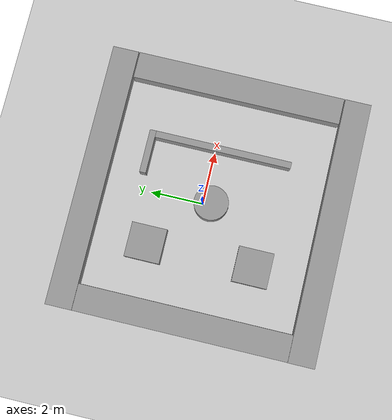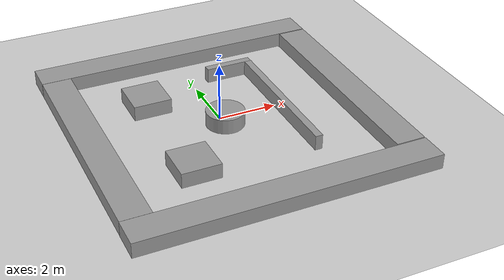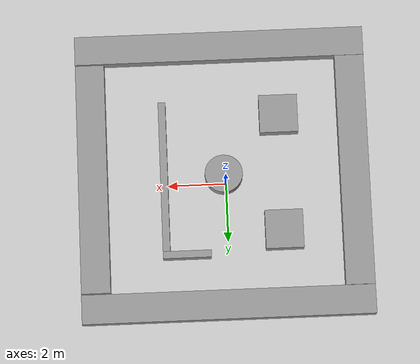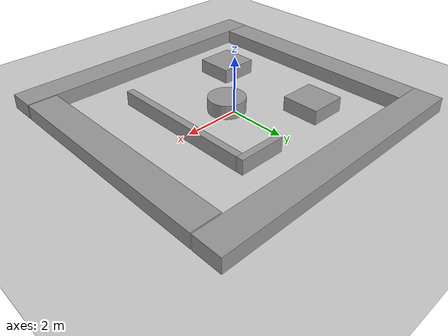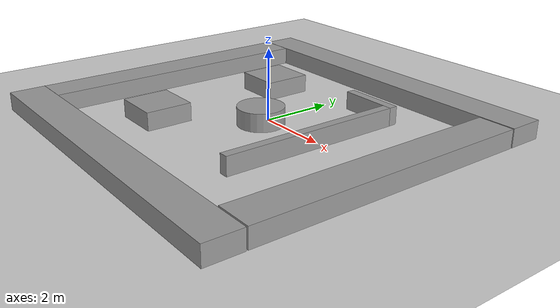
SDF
<sdf version='1.6'>
  <world name='default'>
    <!-- A global light source -->
    <include>
      <uri>model://sun</uri>
    </include>

    <!-- A ground plane -->
    <include>
      <uri>model://ground_plane</uri>
    </include>

    <physics type="ode">
      <real_time_update_rate>100.0</real_time_update_rate>
      <max_step_size>0.01</max_step_size>
      <real_time_factor>0.5</real_time_factor>
      <ode>
        <solver>
          <type>quick</type>
          <iters>150</iters>
          <precon_iters>0</precon_iters>
          <sor>1.400000</sor>
          <use_dynamic_moi_rescaling>1</use_dynamic_moi_rescaling>
        </solver>
        <constraints>
          <cfm>0.00001</cfm>
          <erp>0.2</erp>
          <contact_max_correcting_vel>2000.000000</contact_max_correcting_vel>
          <contact_surface_layer>0.01000</contact_surface_layer>
        </constraints>
      </ode>
    </physics>

    <!-- Load world -->
    <include>
      <uri>model://cluttered_world</uri>
    </include>

    <scene>
      <ambient>0.4 0.4 0.4 1</ambient>
      <background>0.7 0.7 0.7 1</background>
      <shadows>false</shadows>
    </scene>

    <gui fullscreen='0'>
      <camera name='user_camera'>
        <pose>0.8 0.0 12.0 0 1.5708 0</pose>
        <view_controller>orbit</view_controller>
      </camera>
    </gui>
  </world>
</sdf>

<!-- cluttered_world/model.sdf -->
<sdf version='1.6'>
  <model name='model'>
    <link name='link_0'>
      <pose frame=''>4.57139 -0.304798 0 0 -0 0</pose>
      <inertial>
        <mass>7.96481</mass>
        <inertia>
          <ixx>42.7699</ixx>
          <ixy>0</ixy>
          <ixz>0</ixz>
          <iyy>1.32747</iyy>
          <iyz>0</iyz>
          <izz>42.7699</izz>
        </inertia>
        <pose frame=''>0 0 0 0 -0 0</pose>
      </inertial>
      <visual name='visual'>
        <pose frame=''>0 0 0 0 -0 0</pose>
        <geometry>
          <box>
            <size>1 7.9648 1</size>
          </box>
        </geometry>
        <material>
          <lighting>1</lighting>
          <script>
            <uri>file://media/materials/scripts/gazebo.material</uri>
            <name>Gazebo/Grey</name>
          </script>
          <ambient>0.3 0.3 0.3 1</ambient>
          <diffuse>0.7 0.7 0.7 1</diffuse>
          <specular>0.01 0.01 0.01 1</specular>
          <emissive>0 0 0 1</emissive>
        </material>
        <cast_shadows>1</cast_shadows>
        <transparency>0</transparency>
      </visual>
      <collision name='collision'>
        <laser_retro>0</laser_retro>
        <max_contacts>10</max_contacts>
        <pose frame=''>0 0 0 0 -0 0</pose>
        <geometry>
          <box>
            <size>1 7.9648 1</size>
          </box>
        </geometry>
        <surface>
          <friction>
            <ode>
              <mu>1</mu>
              <mu2>1</mu2>
              <fdir1>0 0 0</fdir1>
              <slip1>0</slip1>
              <slip2>0</slip2>
            </ode>
            <torsional>
              <coefficient>1</coefficient>
              <patch_radius>0</patch_radius>
              <surface_radius>0</surface_radius>
              <use_patch_radius>1</use_patch_radius>
              <ode>
                <slip>0</slip>
              </ode>
            </torsional>
          </friction>
          <bounce>
            <restitution_coefficient>0</restitution_coefficient>
            <threshold>1e+06</threshold>
          </bounce>
          <contact>
            <collide_without_contact>0</collide_without_contact>
            <collide_without_contact_bitmask>1</collide_without_contact_bitmask>
            <collide_bitmask>1</collide_bitmask>
            <ode>
              <soft_cfm>0</soft_cfm>
              <soft_erp>0.2</soft_erp>
              <kp>1e+13</kp>
              <kd>1</kd>
              <max_vel>0.01</max_vel>
              <min_depth>0</min_depth>
            </ode>
            <bullet>
              <split_impulse>1</split_impulse>
              <split_impulse_penetration_threshold>-0.01</split_impulse_penetration_threshold>
              <soft_cfm>0</soft_cfm>
              <soft_erp>0.2</soft_erp>
              <kp>1e+13</kp>
              <kd>1</kd>
            </bullet>
          </contact>
        </surface>
      </collision>
    </link>
    <link name='link_1'>
      <pose frame=''>0.062002 -4.82471 0 0 -0 0</pose>
      <inertial>
        <mass>10.0264</mass>
        <inertia>
          <ixx>1.67107</ixx>
          <ixy>0</ixy>
          <ixz>0</ixz>
          <iyy>84.8304</iyy>
          <iyz>0</iyz>
          <izz>84.8304</izz>
        </inertia>
        <pose frame=''>0 0 0 0 -0 0</pose>
      </inertial>
      <visual name='visual'>
        <pose frame=''>0 0 0 0 -0 0</pose>
        <geometry>
          <box>
            <size>10.0264 1 1</size>
          </box>
        </geometry>
        <material>
          <lighting>1</lighting>
          <script>
            <uri>file://media/materials/scripts/gazebo.material</uri>
            <name>Gazebo/Grey</name>
          </script>
          <ambient>0.3 0.3 0.3 1</ambient>
          <diffuse>0.7 0.7 0.7 1</diffuse>
          <specular>0.01 0.01 0.01 1</specular>
          <emissive>0 0 0 1</emissive>
        </material>
        <cast_shadows>1</cast_shadows>
        <transparency>0</transparency>
      </visual>
      <collision name='collision'>
        <laser_retro>0</laser_retro>
        <max_contacts>10</max_contacts>
        <pose frame=''>0 0 0 0 -0 0</pose>
        <geometry>
          <box>
            <size>10.0264 1 1</size>
          </box>
        </geometry>
        <surface>
          <friction>
            <ode>
              <mu>1</mu>
              <mu2>1</mu2>
              <fdir1>0 0 0</fdir1>
              <slip1>0</slip1>
              <slip2>0</slip2>
            </ode>
            <torsional>
              <coefficient>1</coefficient>
              <patch_radius>0</patch_radius>
              <surface_radius>0</surface_radius>
              <use_patch_radius>1</use_patch_radius>
              <ode>
                <slip>0</slip>
              </ode>
            </torsional>
          </friction>
          <bounce>
            <restitution_coefficient>0</restitution_coefficient>
            <threshold>1e+06</threshold>
          </bounce>
          <contact>
            <collide_without_contact>0</collide_without_contact>
            <collide_without_contact_bitmask>1</collide_without_contact_bitmask>
            <collide_bitmask>1</collide_bitmask>
            <ode>
              <soft_cfm>0</soft_cfm>
              <soft_erp>0.2</soft_erp>
              <kp>1e+13</kp>
              <kd>1</kd>
              <max_vel>0.01</max_vel>
              <min_depth>0</min_depth>
            </ode>
            <bullet>
              <split_impulse>1</split_impulse>
              <split_impulse_penetration_threshold>-0.01</split_impulse_penetration_threshold>
              <soft_cfm>0</soft_cfm>
              <soft_erp>0.2</soft_erp>
              <kp>1e+13</kp>
              <kd>1</kd>
            </bullet>
          </contact>
        </surface>
      </collision>
    </link>
    <link name='link_2'>
      <pose frame=''>0.062002 4.21849 0 0 -0 0</pose>
      <inertial>
        <mass>10.019</mass>
        <inertia>
          <ixx>1.66984</ixx>
          <ixy>0</ixy>
          <ixz>0</ixz>
          <iyy>84.6451</iyy>
          <iyz>0</iyz>
          <izz>84.6451</izz>
        </inertia>
        <pose frame=''>0 0 0 0 -0 0</pose>
      </inertial>
      <visual name='visual'>
        <pose frame=''>0 0 0 0 -0 0</pose>
        <geometry>
          <box>
            <size>10.019 1 1</size>
          </box>
        </geometry>
        <material>
          <lighting>1</lighting>
          <script>
            <uri>file://media/materials/scripts/gazebo.material</uri>
            <name>Gazebo/Grey</name>
          </script>
          <ambient>0.3 0.3 0.3 1</ambient>
          <diffuse>0.7 0.7 0.7 1</diffuse>
          <specular>0.01 0.01 0.01 1</specular>
          <emissive>0 0 0 1</emissive>
        </material>
        <cast_shadows>1</cast_shadows>
        <transparency>0</transparency>
      </visual>
      <collision name='collision'>
        <laser_retro>0</laser_retro>
        <max_contacts>10</max_contacts>
        <pose frame=''>0 0 0 0 -0 0</pose>
        <geometry>
          <box>
            <size>10.019 1 1</size>
          </box>
        </geometry>
        <surface>
          <friction>
            <ode>
              <mu>1</mu>
              <mu2>1</mu2>
              <fdir1>0 0 0</fdir1>
              <slip1>0</slip1>
              <slip2>0</slip2>
            </ode>
            <torsional>
              <coefficient>1</coefficient>
              <patch_radius>0</patch_radius>
              <surface_radius>0</surface_radius>
              <use_patch_radius>1</use_patch_radius>
              <ode>
                <slip>0</slip>
              </ode>
            </torsional>
          </friction>
          <bounce>
            <restitution_coefficient>0</restitution_coefficient>
            <threshold>1e+06</threshold>
          </bounce>
          <contact>
            <collide_without_contact>0</collide_without_contact>
            <collide_without_contact_bitmask>1</collide_without_contact_bitmask>
            <collide_bitmask>1</collide_bitmask>
            <ode>
              <soft_cfm>0</soft_cfm>
              <soft_erp>0.2</soft_erp>
              <kp>1e+13</kp>
              <kd>1</kd>
              <max_vel>0.01</max_vel>
              <min_depth>0</min_depth>
            </ode>
            <bullet>
              <split_impulse>1</split_impulse>
              <split_impulse_penetration_threshold>-0.01</split_impulse_penetration_threshold>
              <soft_cfm>0</soft_cfm>
              <soft_erp>0.2</soft_erp>
              <kp>1e+13</kp>
              <kd>1</kd>
            </bullet>
          </contact>
        </surface>
      </collision>
    </link>
    <link name='link_3'>
      <pose frame=''>-4.44524 -0.304798 0 0 -0 0</pose>
      <inertial>
        <mass>8.03564</mass>
        <inertia>
          <ixx>43.9091</ixx>
          <ixy>0</ixy>
          <ixz>0</ixz>
          <iyy>1.33928</iyy>
          <iyz>0</iyz>
          <izz>43.9091</izz>
        </inertia>
        <pose frame=''>0 0 0 0 -0 0</pose>
      </inertial>
      <visual name='visual'>
        <pose frame=''>0 0 0 0 -0 0</pose>
        <geometry>
          <box>
            <size>1 8.03564 1</size>
          </box>
        </geometry>
        <material>
          <lighting>1</lighting>
          <script>
            <uri>file://media/materials/scripts/gazebo.material</uri>
            <name>Gazebo/Grey</name>
          </script>
          <ambient>0.3 0.3 0.3 1</ambient>
          <diffuse>0.7 0.7 0.7 1</diffuse>
          <specular>0.01 0.01 0.01 1</specular>
          <emissive>0 0 0 1</emissive>
        </material>
        <cast_shadows>1</cast_shadows>
        <transparency>0</transparency>
      </visual>
      <collision name='collision'>
        <laser_retro>0</laser_retro>
        <max_contacts>10</max_contacts>
        <pose frame=''>0 0 0 0 -0 0</pose>
        <geometry>
          <box>
            <size>1 8.03564 1</size>
          </box>
        </geometry>
        <surface>
          <friction>
            <ode>
              <mu>1</mu>
              <mu2>1</mu2>
              <fdir1>0 0 0</fdir1>
              <slip1>0</slip1>
              <slip2>0</slip2>
            </ode>
            <torsional>
              <coefficient>1</coefficient>
              <patch_radius>0</patch_radius>
              <surface_radius>0</surface_radius>
              <use_patch_radius>1</use_patch_radius>
              <ode>
                <slip>0</slip>
              </ode>
            </torsional>
          </friction>
          <bounce>
            <restitution_coefficient>0</restitution_coefficient>
            <threshold>1e+06</threshold>
          </bounce>
          <contact>
            <collide_without_contact>0</collide_without_contact>
            <collide_without_contact_bitmask>1</collide_without_contact_bitmask>
            <collide_bitmask>1</collide_bitmask>
            <ode>
              <soft_cfm>0</soft_cfm>
              <soft_erp>0.2</soft_erp>
              <kp>1e+13</kp>
              <kd>1</kd>
              <max_vel>0.01</max_vel>
              <min_depth>0</min_depth>
            </ode>
            <bullet>
              <split_impulse>1</split_impulse>
              <split_impulse_penetration_threshold>-0.01</split_impulse_penetration_threshold>
              <soft_cfm>0</soft_cfm>
              <soft_erp>0.2</soft_erp>
              <kp>1e+13</kp>
              <kd>1</kd>
            </bullet>
          </contact>
        </surface>
      </collision>
    </link>
    <link name='link_5'>
      <pose frame=''>-1.90606 -2.34383 0 0 -0 0</pose>
      <inertial>
        <mass>1.7477</mass>
        <inertia>
          <ixx>0.398521</ixx>
          <ixy>0</ixy>
          <ixz>0</ixz>
          <iyy>0.401849</iyy>
          <iyz>0</iyz>
          <izz>0.509086</izz>
        </inertia>
        <pose frame=''>0 0 0 0 -0 0</pose>
      </inertial>
      <visual name='visual'>
        <pose frame=''>0 0 0 0 -0 0</pose>
        <geometry>
          <box>
            <size>1.32634 1.31769 1</size>
          </box>
        </geometry>
        <material>
          <lighting>1</lighting>
          <script>
            <uri>file://media/materials/scripts/gazebo.material</uri>
            <name>Gazebo/Grey</name>
          </script>
          <ambient>0.3 0.3 0.3 1</ambient>
          <diffuse>0.7 0.7 0.7 1</diffuse>
          <specular>0.01 0.01 0.01 1</specular>
          <emissive>0 0 0 1</emissive>
        </material>
        <cast_shadows>1</cast_shadows>
        <transparency>0</transparency>
      </visual>
      <collision name='collision'>
        <laser_retro>0</laser_retro>
        <max_contacts>10</max_contacts>
        <pose frame=''>0 0 0 0 -0 0</pose>
        <geometry>
          <box>
            <size>1.32634 1.31769 1</size>
          </box>
        </geometry>
        <surface>
          <friction>
            <ode>
              <mu>1</mu>
              <mu2>1</mu2>
              <fdir1>0 0 0</fdir1>
              <slip1>0</slip1>
              <slip2>0</slip2>
            </ode>
            <torsional>
              <coefficient>1</coefficient>
              <patch_radius>0</patch_radius>
              <surface_radius>0</surface_radius>
              <use_patch_radius>1</use_patch_radius>
              <ode>
                <slip>0</slip>
              </ode>
            </torsional>
          </friction>
          <bounce>
            <restitution_coefficient>0</restitution_coefficient>
            <threshold>1e+06</threshold>
          </bounce>
          <contact>
            <collide_without_contact>0</collide_without_contact>
            <collide_without_contact_bitmask>1</collide_without_contact_bitmask>
            <collide_bitmask>1</collide_bitmask>
            <ode>
              <soft_cfm>0</soft_cfm>
              <soft_erp>0.2</soft_erp>
              <kp>1e+13</kp>
              <kd>1</kd>
              <max_vel>0.01</max_vel>
              <min_depth>0</min_depth>
            </ode>
            <bullet>
              <split_impulse>1</split_impulse>
              <split_impulse_penetration_threshold>-0.01</split_impulse_penetration_threshold>
              <soft_cfm>0</soft_cfm>
              <soft_erp>0.2</soft_erp>
              <kp>1e+13</kp>
              <kd>1</kd>
            </bullet>
          </contact>
        </surface>
      </collision>
    </link>
    <link name='link_6'>
      <pose frame=''>-1.938 1.6952 0 0 -0 0</pose>
      <inertial>
        <mass>1.73414</mass>
        <inertia>
          <ixx>0.399889</ixx>
          <ixy>0</ixy>
          <ixz>0</ixz>
          <iyy>0.390434</iyy>
          <iyz>0</iyz>
          <izz>0.501298</izz>
        </inertia>
        <pose frame=''>0 0 0 0 -0 0</pose>
      </inertial>
      <visual name='visual'>
        <pose frame=''>0 0 0 0 -0 0</pose>
        <geometry>
          <box>
            <size>1.30451 1.32934 1</size>
          </box>
        </geometry>
        <material>
          <lighting>1</lighting>
          <script>
            <uri>file://media/materials/scripts/gazebo.material</uri>
            <name>Gazebo/Grey</name>
          </script>
          <ambient>0.3 0.3 0.3 1</ambient>
          <diffuse>0.7 0.7 0.7 1</diffuse>
          <specular>0.01 0.01 0.01 1</specular>
          <emissive>0 0 0 1</emissive>
        </material>
        <cast_shadows>1</cast_shadows>
        <transparency>0</transparency>
      </visual>
      <collision name='collision'>
        <laser_retro>0</laser_retro>
        <max_contacts>10</max_contacts>
        <pose frame=''>0 0 0 0 -0 0</pose>
        <geometry>
          <box>
            <size>1.30451 1.32934 1</size>
          </box>
        </geometry>
        <surface>
          <friction>
            <ode>
              <mu>1</mu>
              <mu2>1</mu2>
              <fdir1>0 0 0</fdir1>
              <slip1>0</slip1>
              <slip2>0</slip2>
            </ode>
            <torsional>
              <coefficient>1</coefficient>
              <patch_radius>0</patch_radius>
              <surface_radius>0</surface_radius>
              <use_patch_radius>1</use_patch_radius>
              <ode>
                <slip>0</slip>
              </ode>
            </torsional>
          </friction>
          <bounce>
            <restitution_coefficient>0</restitution_coefficient>
            <threshold>1e+06</threshold>
          </bounce>
          <contact>
            <collide_without_contact>0</collide_without_contact>
            <collide_without_contact_bitmask>1</collide_without_contact_bitmask>
            <collide_bitmask>1</collide_bitmask>
            <ode>
              <soft_cfm>0</soft_cfm>
              <soft_erp>0.2</soft_erp>
              <kp>1e+13</kp>
              <kd>1</kd>
              <max_vel>0.01</max_vel>
              <min_depth>0</min_depth>
            </ode>
            <bullet>
              <split_impulse>1</split_impulse>
              <split_impulse_penetration_threshold>-0.01</split_impulse_penetration_threshold>
              <soft_cfm>0</soft_cfm>
              <soft_erp>0.2</soft_erp>
              <kp>1e+13</kp>
              <kd>1</kd>
            </bullet>
          </contact>
        </surface>
      </collision>
    </link>
    <link name='link_7'>
      <pose frame=''>0.062002 -0.304798 0 0 -0 0</pose>
      <inertial>
        <mass>1.70339</mass>
        <inertia>
          <ixx>0.323294</ixx>
          <ixy>0</ixy>
          <ixz>0</ixz>
          <iyy>0.323294</iyy>
          <iyz>0</iyz>
          <izz>0.362692</izz>
        </inertia>
        <pose frame=''>0 0 0 0 -0 0</pose>
      </inertial>
      <visual name='visual'>
        <pose frame=''>0 0 0 0 -0 0</pose>
        <geometry>
          <cylinder>
            <radius>0.65257</radius>
            <length>1</length>
          </cylinder>
        </geometry>
        <material>
          <lighting>1</lighting>
          <script>
            <uri>file://media/materials/scripts/gazebo.material</uri>
            <name>Gazebo/Grey</name>
          </script>
          <ambient>0.3 0.3 0.3 1</ambient>
          <diffuse>0.7 0.7 0.7 1</diffuse>
          <specular>0.01 0.01 0.01 1</specular>
          <emissive>0 0 0 1</emissive>
        </material>
        <cast_shadows>1</cast_shadows>
        <transparency>0</transparency>
      </visual>
      <collision name='collision'>
        <laser_retro>0</laser_retro>
        <max_contacts>10</max_contacts>
        <pose frame=''>0 0 0 0 -0 0</pose>
        <geometry>
          <cylinder>
            <radius>0.65257</radius>
            <length>1</length>
          </cylinder>
        </geometry>
        <surface>
          <friction>
            <ode>
              <mu>1</mu>
              <mu2>1</mu2>
              <fdir1>0 0 0</fdir1>
              <slip1>0</slip1>
              <slip2>0</slip2>
            </ode>
            <torsional>
              <coefficient>1</coefficient>
              <patch_radius>0</patch_radius>
              <surface_radius>0</surface_radius>
              <use_patch_radius>1</use_patch_radius>
              <ode>
                <slip>0</slip>
              </ode>
            </torsional>
          </friction>
          <bounce>
            <restitution_coefficient>0</restitution_coefficient>
            <threshold>1e+06</threshold>
          </bounce>
          <contact>
            <collide_without_contact>0</collide_without_contact>
            <collide_without_contact_bitmask>1</collide_without_contact_bitmask>
            <collide_bitmask>1</collide_bitmask>
            <ode>
              <soft_cfm>0</soft_cfm>
              <soft_erp>0.2</soft_erp>
              <kp>1e+13</kp>
              <kd>1</kd>
              <max_vel>0.01</max_vel>
              <min_depth>0</min_depth>
            </ode>
            <bullet>
              <split_impulse>1</split_impulse>
              <split_impulse_penetration_threshold>-0.01</split_impulse_penetration_threshold>
              <soft_cfm>0</soft_cfm>
              <soft_erp>0.2</soft_erp>
              <kp>1e+13</kp>
              <kd>1</kd>
            </bullet>
          </contact>
        </surface>
      </collision>
    </link>
    <link name='link_8'>
      <pose frame=''>2.11896 -0.278129 0 0 -0 0</pose>
      <inertial>
        <mass>1.30492</mass>
        <inertia>
          <ixx>3.05515</ixx>
          <ixy>0</ixy>
          <ixz>0</ixz>
          <iyy>0.115578</iyy>
          <iyz>0</iyz>
          <izz>2.95324</izz>
        </inertia>
        <pose frame=''>0 0 0 0 -0 0</pose>
      </inertial>
      <visual name='visual'>
        <pose frame=''>0 0 0 0 -0 0</pose>
        <geometry>
          <box>
            <size>0.2507 5.20528 1</size>
          </box>
        </geometry>
        <material>
          <lighting>1</lighting>
          <script>
            <uri>file://media/materials/scripts/gazebo.material</uri>
            <name>Gazebo/Grey</name>
          </script>
          <ambient>0.3 0.3 0.3 1</ambient>
          <diffuse>0.7 0.7 0.7 1</diffuse>
          <specular>0.01 0.01 0.01 1</specular>
          <emissive>0 0 0 1</emissive>
        </material>
        <cast_shadows>1</cast_shadows>
        <transparency>0</transparency>
      </visual>
      <collision name='collision'>
        <laser_retro>0</laser_retro>
        <max_contacts>10</max_contacts>
        <pose frame=''>0 0 0 0 -0 0</pose>
        <geometry>
          <box>
            <size>0.2507 5.20528 1</size>
          </box>
        </geometry>
        <surface>
          <friction>
            <ode>
              <mu>1</mu>
              <mu2>1</mu2>
              <fdir1>0 0 0</fdir1>
              <slip1>0</slip1>
              <slip2>0</slip2>
            </ode>
            <torsional>
              <coefficient>1</coefficient>
              <patch_radius>0</patch_radius>
              <surface_radius>0</surface_radius>
              <use_patch_radius>1</use_patch_radius>
              <ode>
                <slip>0</slip>
              </ode>
            </torsional>
          </friction>
          <bounce>
            <restitution_coefficient>0</restitution_coefficient>
            <threshold>1e+06</threshold>
          </bounce>
          <contact>
            <collide_without_contact>0</collide_without_contact>
            <collide_without_contact_bitmask>1</collide_without_contact_bitmask>
            <collide_bitmask>1</collide_bitmask>
            <ode>
              <soft_cfm>0</soft_cfm>
              <soft_erp>0.2</soft_erp>
              <kp>1e+13</kp>
              <kd>1</kd>
              <max_vel>0.01</max_vel>
              <min_depth>0</min_depth>
            </ode>
            <bullet>
              <split_impulse>1</split_impulse>
              <split_impulse_penetration_threshold>-0.01</split_impulse_penetration_threshold>
              <soft_cfm>0</soft_cfm>
              <soft_erp>0.2</soft_erp>
              <kp>1e+13</kp>
              <kd>1</kd>
            </bullet>
          </contact>
        </surface>
      </collision>
    </link>
    <link name='link_9'>
      <pose frame=''>1.41294 2.44738 0 0 -0 0</pose>
      <inertial>
        <mass>0.405322</mass>
        <inertia>
          <ixx>0.0358064</ixx>
          <ixy>0</ixy>
          <ixz>0</ixz>
          <iyy>0.126128</iyy>
          <iyz>0</iyz>
          <izz>0.094381</izz>
        </inertia>
        <pose frame=''>0 0 0 0 -0 0</pose>
      </inertial>
      <visual name='visual'>
        <pose frame=''>0 0 0 0 -0 0</pose>
        <geometry>
          <box>
            <size>1.65353 0.245131 1</size>
          </box>
        </geometry>
        <material>
          <lighting>1</lighting>
          <script>
            <uri>file://media/materials/scripts/gazebo.material</uri>
            <name>Gazebo/Grey</name>
          </script>
          <ambient>0.3 0.3 0.3 1</ambient>
          <diffuse>0.7 0.7 0.7 1</diffuse>
          <specular>0.01 0.01 0.01 1</specular>
          <emissive>0 0 0 1</emissive>
        </material>
        <cast_shadows>1</cast_shadows>
        <transparency>0</transparency>
      </visual>
      <collision name='collision'>
        <laser_retro>0</laser_retro>
        <max_contacts>10</max_contacts>
        <pose frame=''>0 0 0 0 -0 0</pose>
        <geometry>
          <box>
            <size>1.65353 0.245131 1</size>
          </box>
        </geometry>
        <surface>
          <friction>
            <ode>
              <mu>1</mu>
              <mu2>1</mu2>
              <fdir1>0 0 0</fdir1>
              <slip1>0</slip1>
              <slip2>0</slip2>
            </ode>
            <torsional>
              <coefficient>1</coefficient>
              <patch_radius>0</patch_radius>
              <surface_radius>0</surface_radius>
              <use_patch_radius>1</use_patch_radius>
              <ode>
                <slip>0</slip>
              </ode>
            </torsional>
          </friction>
          <bounce>
            <restitution_coefficient>0</restitution_coefficient>
            <threshold>1e+06</threshold>
          </bounce>
          <contact>
            <collide_without_contact>0</collide_without_contact>
            <collide_without_contact_bitmask>1</collide_without_contact_bitmask>
            <collide_bitmask>1</collide_bitmask>
            <ode>
              <soft_cfm>0</soft_cfm>
              <soft_erp>0.2</soft_erp>
              <kp>1e+13</kp>
              <kd>1</kd>
              <max_vel>0.01</max_vel>
              <min_depth>0</min_depth>
            </ode>
            <bullet>
              <split_impulse>1</split_impulse>
              <split_impulse_penetration_threshold>-0.01</split_impulse_penetration_threshold>
              <soft_cfm>0</soft_cfm>
              <soft_erp>0.2</soft_erp>
              <kp>1e+13</kp>
              <kd>1</kd>
            </bullet>
          </contact>
        </surface>
      </collision>
    </link>
    <static>0</static>
    <allow_auto_disable>1</allow_auto_disable>
  </model>
</sdf>
